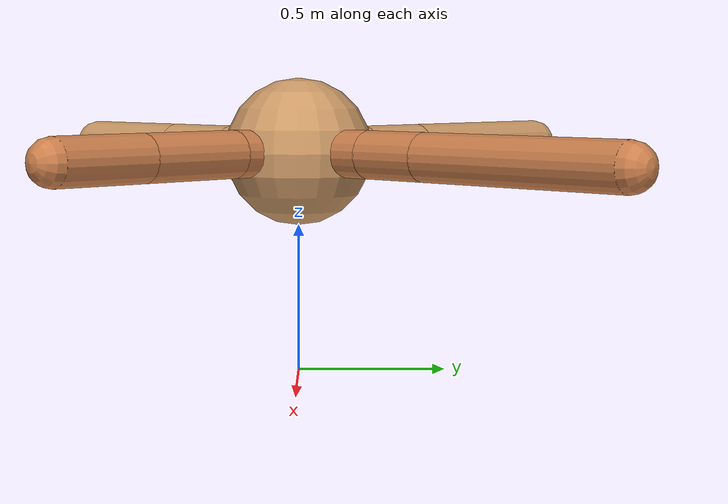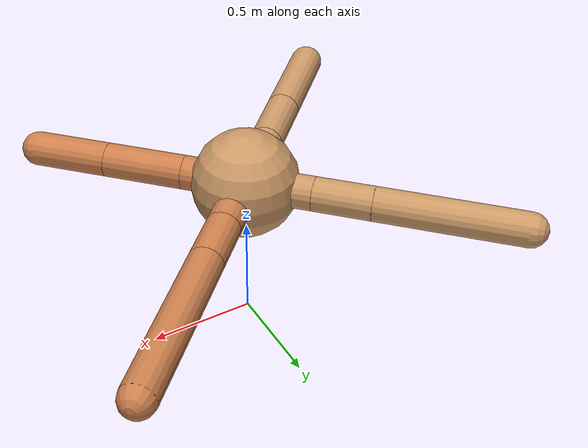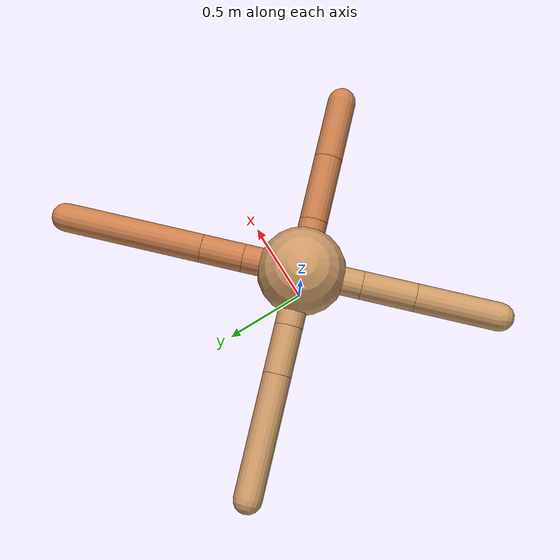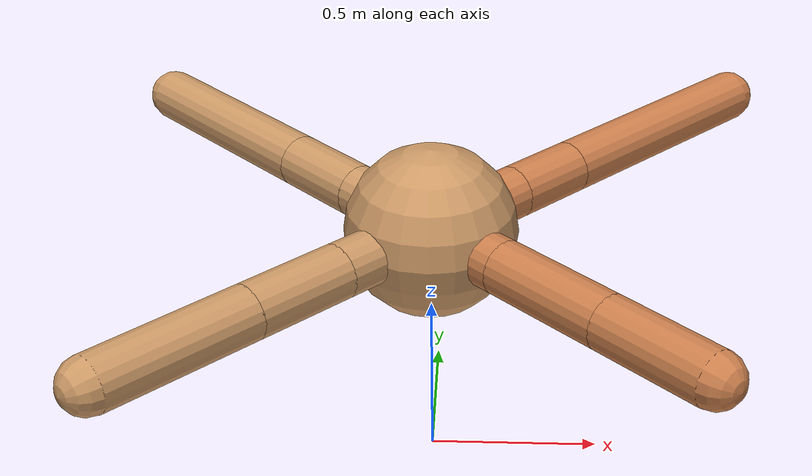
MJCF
<mujoco model="ant">
  <compiler angle="degree" coordinate="local" inertiafromgeom="true" />
  <option integrator="RK4" timestep="0.01" />
  <custom>
    <numeric data="0.0 0.0 0.55 1.0 0.0 0.0 0.0 0.0 1.0 0.0 -1.0 0.0 -1.0 0.0 1.0" name="init_qpos" />
  </custom>
  <default>
    <joint armature="1" damping="1" limited="true" />
    <geom conaffinity="0" condim="3" density="5.0" friction="1.5 0.1 0.1" margin="0.01" rgba="0.8 0.6 0.4 1" />
  </default>
  <worldbody>
    <body name="torso" pos="0 0 0.75">
      <geom name="torso_geom" pos="0 0 0" size="0.25" type="sphere" />

      <body name="front_left_leg" pos="0 0 0">
        <geom fromto="0.0 0.0 0.0 0.2353069502103956 0.2353069502103956 0.0" name="aux_1_geom" size="0.08" type="capsule" rgba=".8 .5 .3 1" />
        <body name="aux_1" pos="0.2353069502103956 0.2353069502103956 0.0">
          <joint axis="0 0 1" name="hip_1" pos="0.0 0.0 0.0" range="-40 40" type="hinge" />
          <geom fromto="0.0 0.0 0.0 0.1694898900144036 0.1694898900144036 0.0" name="left_leg_geom" size="0.08" type="capsule" rgba=".8 .5 .3 1" />
          <body pos="0.1694898900144036 0.1694898900144036 0.0" name="front_left_foot">
            <joint axis="-1 1 0" name="ankle_1" pos="0.0 0.0 0.0" range="30 100" type="hinge" />
            <geom fromto="0.0 0.0 0.0 0.5538221656155499 0.5538221656155499 0.0" name="left_ankle_geom" size="0.08" type="capsule" rgba=".8 .5 .3 1" />
          </body>
        </body>
      </body>
      <body name="front_right_leg" pos="0 0 0">
        <geom fromto="0.0 0.0 0.0 -0.22591916309856994 0.22591916309856994 0.0" name="aux_2_geom" size="0.08" type="capsule" />
        <body name="aux_2" pos="-0.22591916309856994 0.22591916309856994 0.0">
          <joint axis="0 0 1" name="hip_2" pos="0.0 0.0 0.0" range="-40 40" type="hinge" />
          <geom fromto="0.0 0.0 0.0 -0.1940989929872431 0.1940989929872431 0.0" name="right_leg_geom" size="0.08" type="capsule" />
          <body pos="-0.1940989929872431 0.1940989929872431 0.0" name="front_right_foot">
            <joint axis="1 1 0" name="ankle_2" pos="0.0 0.0 0.0" range="-100 -30" type="hinge" />
            <geom fromto="0.0 0.0 0.0 -0.48376854749844683 0.48376854749844683 0.0" name="right_ankle_geom" size="0.08" type="capsule" />
          </body>
        </body>
      </body>
      <body name="left_back_leg" pos="0 0 0">
        <geom fromto="0.0 0.0 0.0 -0.241275899967484 -0.241275899967484 0.0" name="aux_3_geom" size="0.08" type="capsule" />
        <body name="aux_3" pos="-0.241275899967484 -0.241275899967484 0.0">
          <joint axis="0 0 1" name="hip_3" pos="0.0 0.0 0.0" range="-40 40" type="hinge" />
          <geom fromto="0.0 0.0 0.0 -0.21432703957786742 -0.21432703957786742 0.0" name="back_leg_geom" size="0.08" type="capsule" />
          <body pos="-0.21432703957786742 -0.21432703957786742 0.0" name="left_back_foot">
            <joint axis="-1 1 0" name="ankle_3" pos="0.0 0.0 0.0" range="-100 -30" type="hinge" />
            <geom fromto="0.0 0.0 0.0 -0.33636015790929313 -0.33636015790929313 0.0" name="third_ankle_geom" size="0.08" type="capsule" />
          </body>
        </body>
      </body>
      <body name="right_back_leg" pos="0 0 0">
        <geom fromto="0.0 0.0 0.0 0.20654744807681974 -0.20654744807681974 0.0" name="aux_4_geom" size="0.08" type="capsule" rgba=".8 .5 .3 1" />
        <body name="aux_4" pos="0.20654744807681974 -0.20654744807681974 0.0">
          <joint axis="0 0 1" name="hip_4" pos="0.0 0.0 0.0" range="-40 40" type="hinge" />
          <geom fromto="0.0 0.0 0.0 0.26602426393962825 -0.26602426393962825 0.0" name="rightback_leg_geom" size="0.08" type="capsule" rgba=".8 .5 .3 1" />
          <body pos="0.26602426393962825 -0.26602426393962825 0.0" name="right_back_foot">
            <joint axis="1 1 0" name="ankle_4" pos="0.0 0.0 0.0" range="30 100" type="hinge" />
            <geom fromto="0.0 0.0 0.0 0.24662503555729962 -0.24662503555729962 0.0" name="fourth_ankle_geom" size="0.08" type="capsule" rgba=".8 .5 .3 1" />
          </body>
        </body>
      </body>
    </body>
  </worldbody>
  <actuator>
    <motor ctrllimited="true" ctrlrange="-1.0 1.0" joint="hip_4" gear="150" />
    <motor ctrllimited="true" ctrlrange="-1.0 1.0" joint="ankle_4" gear="150" />
    <motor ctrllimited="true" ctrlrange="-1.0 1.0" joint="hip_1" gear="150" />
    <motor ctrllimited="true" ctrlrange="-1.0 1.0" joint="ankle_1" gear="150" />
    <motor ctrllimited="true" ctrlrange="-1.0 1.0" joint="hip_2" gear="150" />
    <motor ctrllimited="true" ctrlrange="-1.0 1.0" joint="ankle_2" gear="150" />
    <motor ctrllimited="true" ctrlrange="-1.0 1.0" joint="hip_3" gear="150" />
    <motor ctrllimited="true" ctrlrange="-1.0 1.0" joint="ankle_3" gear="150" />
  </actuator>
</mujoco>
